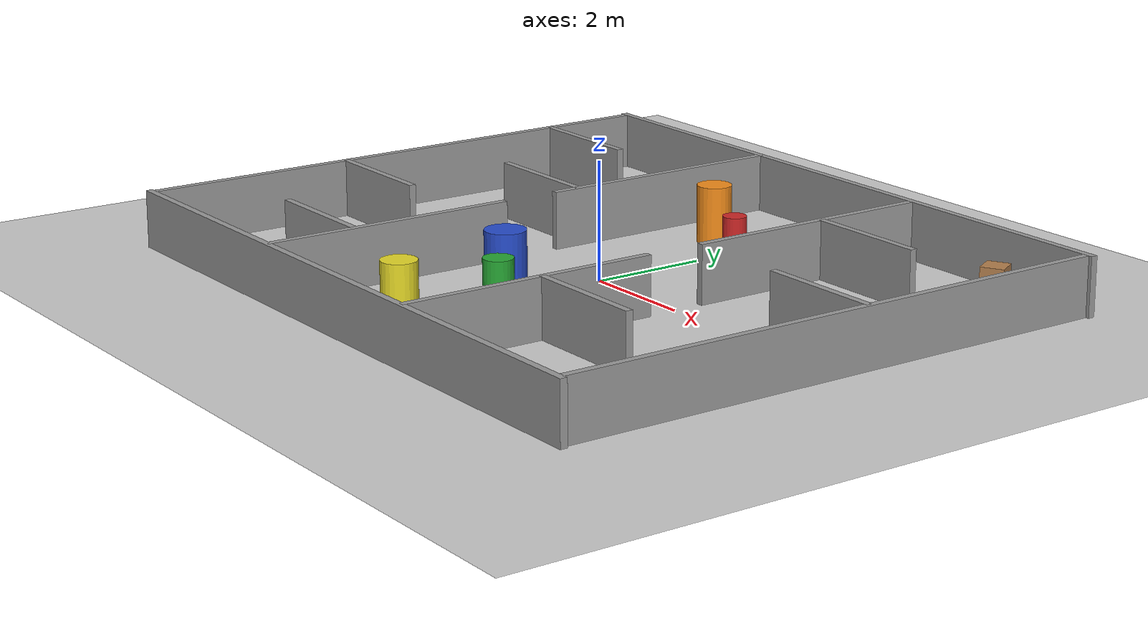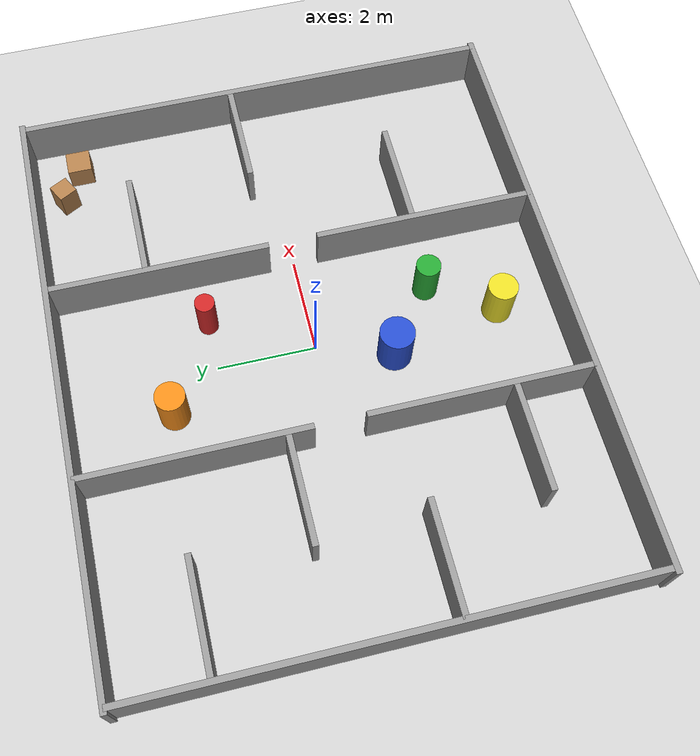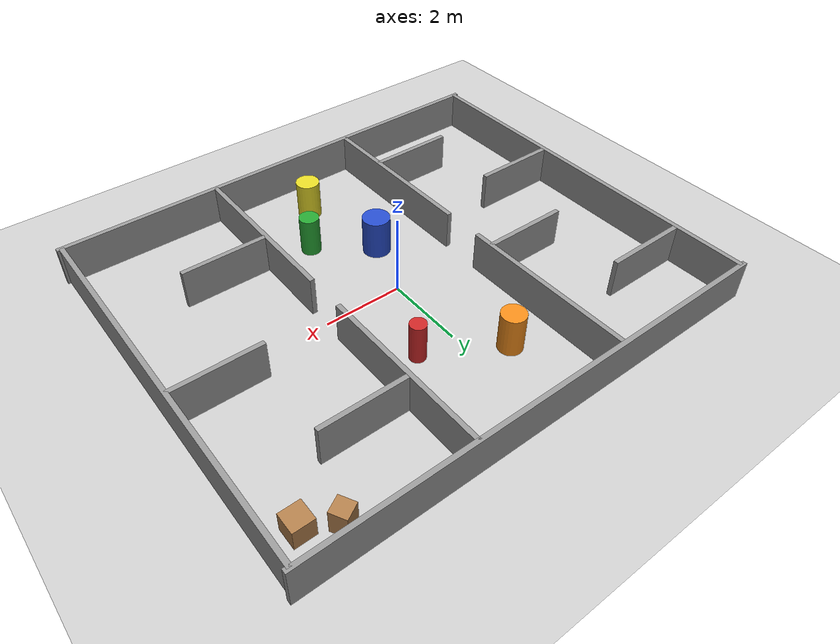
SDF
<?xml version="1.0" ?>
<sdf version="1.7">
  <world name="default">

    <!-- ============ Lighting & physics (same as test_world) ============ -->
    <light name="sun" type="directional">
      <cast_shadows>1</cast_shadows>
      <pose>0 0 10 0 -0 0</pose>
      <diffuse>0.8 0.8 0.8 1</diffuse>
      <specular>0.2 0.2 0.2 1</specular>
      <attenuation>
        <range>1000</range>
        <constant>0.9</constant>
        <linear>0.01</linear>
        <quadratic>0.001</quadratic>
      </attenuation>
      <direction>-0.5 0.1 -0.9</direction>
    </light>

    <gravity>0 0 -9.8</gravity>
    <physics type="ode">
      <max_step_size>0.001</max_step_size>
      <real_time_factor>1</real_time_factor>
      <real_time_update_rate>1000</real_time_update_rate>
    </physics>
    <scene>
      <ambient>0.4 0.4 0.4 1</ambient>
      <background>0.7 0.7 0.7 1</background>
      <shadows>1</shadows>
    </scene>

    <model name="ground_plane">
      <static>1</static>
      <link name="link">
        <collision name="collision">
          <geometry>
            <plane>
              <normal>0 0 1</normal>
              <size>30 30</size>
            </plane>
          </geometry>
          <surface>
            <friction>
              <ode>
                <mu>100</mu>
                <mu2>50</mu2>
              </ode>
            </friction>
          </surface>
        </collision>
        <visual name="visual">
          <geometry>
            <plane>
              <normal>0 0 1</normal>
              <size>30 30</size>
            </plane>
          </geometry>
          <material>
            <script>
              <uri>file://media/materials/scripts/gazebo.material</uri>
              <name>Gazebo/Grey</name>
            </script>
          </material>
        </visual>
      </link>
    </model>

    <model name="arena_walls">
      <static>1</static>

      <!-- Outer boundary -->
      <link name="wall_north">
        <pose>0 5 0.5 0 0 0</pose>
        <collision name="collision">
          <geometry><box><size>12.24 0.12 1.0</size></box></geometry>
        </collision>
        <visual name="visual">
          <geometry><box><size>12.24 0.12 1.0</size></box></geometry>
          <material><script><uri>file://media/materials/scripts/gazebo.material</uri><name>Gazebo/Grey</name></script></material>
        </visual>
      </link>
      <link name="wall_south">
        <pose>0 -5 0.5 0 0 0</pose>
        <collision name="collision">
          <geometry><box><size>12.24 0.12 1.0</size></box></geometry>
        </collision>
        <visual name="visual">
          <geometry><box><size>12.24 0.12 1.0</size></box></geometry>
          <material><script><uri>file://media/materials/scripts/gazebo.material</uri><name>Gazebo/Grey</name></script></material>
        </visual>
      </link>
      <link name="wall_east">
        <pose>6 0 0.5 0 0 0</pose>
        <collision name="collision">
          <geometry><box><size>0.12 10 1.0</size></box></geometry>
        </collision>
        <visual name="visual">
          <geometry><box><size>0.12 10 1.0</size></box></geometry>
          <material><script><uri>file://media/materials/scripts/gazebo.material</uri><name>Gazebo/Grey</name></script></material>
        </visual>
      </link>
      <link name="wall_west">
        <pose>-6 0 0.5 0 0 0</pose>
        <collision name="collision">
          <geometry><box><size>0.12 10 1.0</size></box></geometry>
        </collision>
        <visual name="visual">
          <geometry><box><size>0.12 10 1.0</size></box></geometry>
          <material><script><uri>file://media/materials/scripts/gazebo.material</uri><name>Gazebo/Grey</name></script></material>
        </visual>
      </link>

      <!-- Divider between maze room and open room (x=-2), 1m gate at y=0 -->
      <link name="divider1_upper">
        <pose>-2 2.75 0.5 0 0 0</pose>
        <collision name="collision"><geometry><box><size>0.12 4.5 1.0</size></box></geometry></collision>
        <visual name="visual">
          <geometry><box><size>0.12 4.5 1.0</size></box></geometry>
          <material><script><uri>file://media/materials/scripts/gazebo.material</uri><name>Gazebo/Grey</name></script></material>
        </visual>
      </link>
      <link name="divider1_lower">
        <pose>-2 -2.75 0.5 0 0 0</pose>
        <collision name="collision"><geometry><box><size>0.12 4.5 1.0</size></box></geometry></collision>
        <visual name="visual">
          <geometry><box><size>0.12 4.5 1.0</size></box></geometry>
          <material><script><uri>file://media/materials/scripts/gazebo.material</uri><name>Gazebo/Grey</name></script></material>
        </visual>
      </link>

      <!-- Divider between open room and slalom/goal room (x=2), 1m gate at y=0 -->
      <link name="divider2_upper">
        <pose>2 2.75 0.5 0 0 0</pose>
        <collision name="collision"><geometry><box><size>0.12 4.5 1.0</size></box></geometry></collision>
        <visual name="visual">
          <geometry><box><size>0.12 4.5 1.0</size></box></geometry>
          <material><script><uri>file://media/materials/scripts/gazebo.material</uri><name>Gazebo/Grey</name></script></material>
        </visual>
      </link>
      <link name="divider2_lower">
        <pose>2 -2.75 0.5 0 0 0</pose>
        <collision name="collision"><geometry><box><size>0.12 4.5 1.0</size></box></geometry></collision>
        <visual name="visual">
          <geometry><box><size>0.12 4.5 1.0</size></box></geometry>
          <material><script><uri>file://media/materials/scripts/gazebo.material</uri><name>Gazebo/Grey</name></script></material>
        </visual>
      </link>

      <!-- Zig-zag maze baffles (left room), alternating from the west wall
           and the divider so the robot has to snake back and forth -->
      <link name="maze_baffle_1">
        <pose>-4.9 3.2 0.5 0 0 0</pose>
        <collision name="collision"><geometry><box><size>2.2 0.12 1.0</size></box></geometry></collision>
        <visual name="visual">
          <geometry><box><size>2.2 0.12 1.0</size></box></geometry>
          <material><script><uri>file://media/materials/scripts/gazebo.material</uri><name>Gazebo/Grey</name></script></material>
        </visual>
      </link>
      <link name="maze_baffle_2">
        <pose>-3.1 1.0 0.5 0 0 0</pose>
        <collision name="collision"><geometry><box><size>2.2 0.12 1.0</size></box></geometry></collision>
        <visual name="visual">
          <geometry><box><size>2.2 0.12 1.0</size></box></geometry>
          <material><script><uri>file://media/materials/scripts/gazebo.material</uri><name>Gazebo/Grey</name></script></material>
        </visual>
      </link>
      <link name="maze_baffle_3">
        <pose>-4.9 -1.2 0.5 0 0 0</pose>
        <collision name="collision"><geometry><box><size>2.2 0.12 1.0</size></box></geometry></collision>
        <visual name="visual">
          <geometry><box><size>2.2 0.12 1.0</size></box></geometry>
          <material><script><uri>file://media/materials/scripts/gazebo.material</uri><name>Gazebo/Grey</name></script></material>
        </visual>
      </link>
      <link name="maze_baffle_4">
        <pose>-3.1 -3.4 0.5 0 0 0</pose>
        <collision name="collision"><geometry><box><size>2.2 0.12 1.0</size></box></geometry></collision>
        <visual name="visual">
          <geometry><box><size>2.2 0.12 1.0</size></box></geometry>
          <material><script><uri>file://media/materials/scripts/gazebo.material</uri><name>Gazebo/Grey</name></script></material>
        </visual>
      </link>

      <!-- Slalom baffles (right room), before the goal alcove -->
      <link name="slalom_baffle_1">
        <pose>3.1 3.0 0.5 0 0 0</pose>
        <collision name="collision"><geometry><box><size>2.2 0.12 1.0</size></box></geometry></collision>
        <visual name="visual">
          <geometry><box><size>2.2 0.12 1.0</size></box></geometry>
          <material><script><uri>file://media/materials/scripts/gazebo.material</uri><name>Gazebo/Grey</name></script></material>
        </visual>
      </link>
      <link name="slalom_baffle_2">
        <pose>4.9 0.5 0.5 0 0 0</pose>
        <collision name="collision"><geometry><box><size>2.2 0.12 1.0</size></box></geometry></collision>
        <visual name="visual">
          <geometry><box><size>2.2 0.12 1.0</size></box></geometry>
          <material><script><uri>file://media/materials/scripts/gazebo.material</uri><name>Gazebo/Grey</name></script></material>
        </visual>
      </link>
      <link name="slalom_baffle_3">
        <pose>3.1 -2.5 0.5 0 0 0</pose>
        <collision name="collision"><geometry><box><size>2.2 0.12 1.0</size></box></geometry></collision>
        <visual name="visual">
          <geometry><box><size>2.2 0.12 1.0</size></box></geometry>
          <material><script><uri>file://media/materials/scripts/gazebo.material</uri><name>Gazebo/Grey</name></script></material>
        </visual>
      </link>

    </model>

    <!-- ============ Scattered pillars in the open middle room ============ -->
    <model name="pillar_1">
      <static>1</static>
      <pose>-0.8 3.0 0 0 0 0</pose>
      <link name="link">
        <collision name="collision">
          <pose>0 0 0.5 0 0 0</pose>
          <geometry><cylinder><radius>0.3</radius><length>1.0</length></cylinder></geometry>
        </collision>
        <visual name="visual">
          <pose>0 0 0.5 0 0 0</pose>
          <geometry><cylinder><radius>0.3</radius><length>1.0</length></cylinder></geometry>
          <material><script><uri>file://media/materials/scripts/gazebo.material</uri><name>Gazebo/Orange</name></script></material>
        </visual>
      </link>
    </model>
    <model name="pillar_2">
      <static>1</static>
      <pose>1.0 2.0 0 0 0 0</pose>
      <link name="link">
        <collision name="collision">
          <pose>0 0 0.5 0 0 0</pose>
          <geometry><cylinder><radius>0.2</radius><length>1.0</length></cylinder></geometry>
        </collision>
        <visual name="visual">
          <pose>0 0 0.5 0 0 0</pose>
          <geometry><cylinder><radius>0.2</radius><length>1.0</length></cylinder></geometry>
          <material><script><uri>file://media/materials/scripts/gazebo.material</uri><name>Gazebo/Red</name></script></material>
        </visual>
      </link>
    </model>
    <model name="pillar_3">
      <static>1</static>
      <pose>-0.5 -1.5 0 0 0 0</pose>
      <link name="link">
        <collision name="collision">
          <pose>0 0 0.5 0 0 0</pose>
          <geometry><cylinder><radius>0.35</radius><length>1.0</length></cylinder></geometry>
        </collision>
        <visual name="visual">
          <pose>0 0 0.5 0 0 0</pose>
          <geometry><cylinder><radius>0.35</radius><length>1.0</length></cylinder></geometry>
          <material><script><uri>file://media/materials/scripts/gazebo.material</uri><name>Gazebo/Blue</name></script></material>
        </visual>
      </link>
    </model>
    <model name="pillar_4">
      <static>1</static>
      <pose>0.8 -2.5 0 0 0 0</pose>
      <link name="link">
        <collision name="collision">
          <pose>0 0 0.5 0 0 0</pose>
          <geometry><cylinder><radius>0.25</radius><length>1.0</length></cylinder></geometry>
        </collision>
        <visual name="visual">
          <pose>0 0 0.5 0 0 0</pose>
          <geometry><cylinder><radius>0.25</radius><length>1.0</length></cylinder></geometry>
          <material><script><uri>file://media/materials/scripts/gazebo.material</uri><name>Gazebo/Green</name></script></material>
        </visual>
      </link>
    </model>
    <model name="pillar_5">
      <static>1</static>
      <pose>0 -3.8 0 0 0 0</pose>
      <link name="link">
        <collision name="collision">
          <pose>0 0 0.5 0 0 0</pose>
          <geometry><cylinder><radius>0.3</radius><length>1.0</length></cylinder></geometry>
        </collision>
        <visual name="visual">
          <pose>0 0 0.5 0 0 0</pose>
          <geometry><cylinder><radius>0.3</radius><length>1.0</length></cylinder></geometry>
          <material><script><uri>file://media/materials/scripts/gazebo.material</uri><name>Gazebo/Yellow</name></script></material>
        </visual>
      </link>
    </model>

    <!-- ============ Crates in the goal alcove (top-right corner) ============ -->
    <model name="crate_1">
      <static>1</static>
      <pose>5.3 4.0 0 0 0 0</pose>
      <link name="link">
        <collision name="collision">
          <pose>0 0 0.25 0 0 0</pose>
          <geometry><box><size>0.5 0.5 0.5</size></box></geometry>
        </collision>
        <visual name="visual">
          <pose>0 0 0.25 0 0 0</pose>
          <geometry><box><size>0.5 0.5 0.5</size></box></geometry>
          <material><script><uri>file://media/materials/scripts/gazebo.material</uri><name>Gazebo/Wood</name></script></material>
        </visual>
      </link>
    </model>
    <model name="crate_2">
      <static>1</static>
      <pose>4.6 4.4 0 0 0 0.5</pose>
      <link name="link">
        <collision name="collision">
          <pose>0 0 0.3 0 0 0</pose>
          <geometry><box><size>0.4 0.4 0.6</size></box></geometry>
        </collision>
        <visual name="visual">
          <pose>0 0 0.3 0 0 0</pose>
          <geometry><box><size>0.4 0.4 0.6</size></box></geometry>
          <material><script><uri>file://media/materials/scripts/gazebo.material</uri><name>Gazebo/Wood</name></script></material>
        </visual>
      </link>
    </model>

    <gui fullscreen="0">
      <camera name="user_camera">
        <pose>0 -14 12 0 0.7 1.5708</pose>
        <view_controller>orbit</view_controller>
        <projection_type>perspective</projection_type>
      </camera>
    </gui>

  </world>
</sdf>
